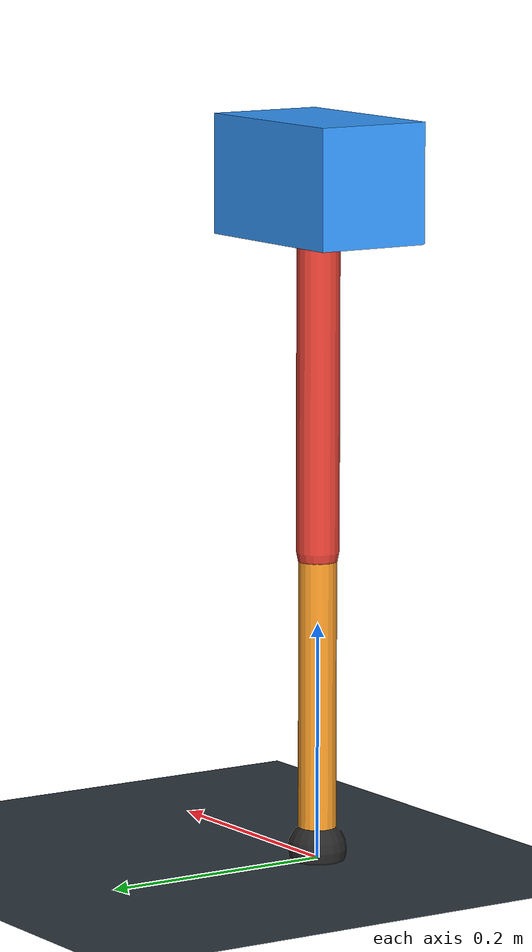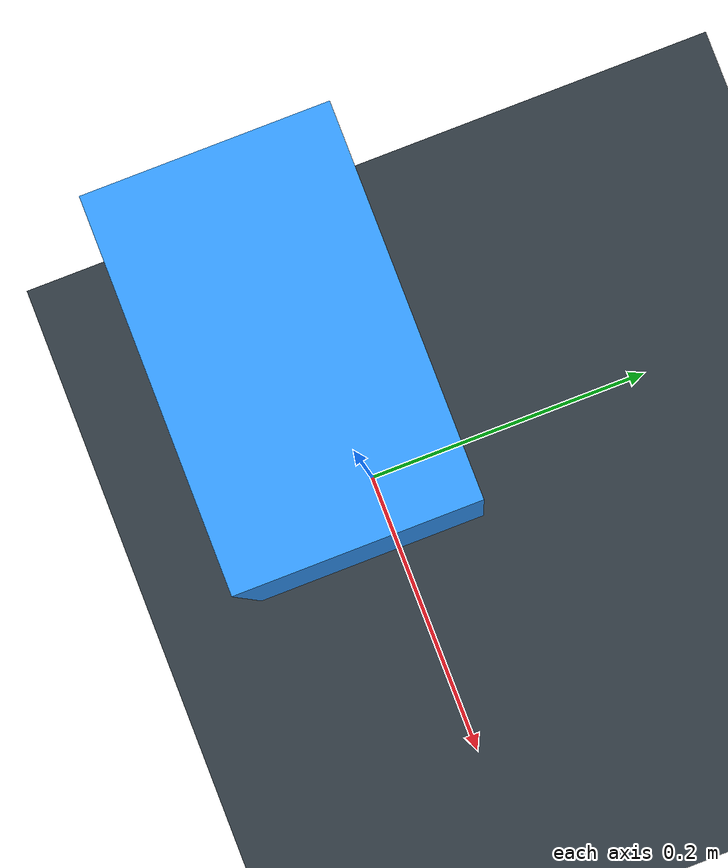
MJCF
<mujoco model="single_axis_two_bar">
  <compiler angle="radian" inertiafromgeom="true"/>
  <option timestep="0.001" integrator="implicitfast" gravity="0 0 -9.81"/>
  <default>
    <joint damping="0.08"/>
    <geom friction="1.2 0.01 0.0001" condim="3"/>
  </default>
  <worldbody>
    <geom name="floor" type="plane" size="5 5 0.1" rgba="0.18 0.22 0.25 1"/>
    <body name="carriage" pos="0 0 0.5719160894609324">
      <joint name="pole_slide" type="slide" axis="0 0 1"/>
      <geom name="payload" type="box" size="0.08 0.05 0.05" mass="2.651928895509752" rgba="0.2 0.6 1 1"/>
      <body name="thigh" pos="0 0 0">
        <joint name="hip" type="hinge" axis="0 1 0"/>
        <geom name="thigh_link" type="capsule" fromto="0 0 0 0 0 -0.3112864102372881" size="0.018" mass="0.22179568058107046" rgba="0.9 0.25 0.2 1"/>
        <body name="shank" pos="0 0 -0.3112864102372881">
          <joint name="knee" type="hinge" axis="0 1 0"/>
          <geom name="shank_link" type="capsule" fromto="0 0 0 0 0 -0.25254460982552884" size="0.016" mass="0.17994137158328283" rgba="0.95 0.6 0.15 1"/>
          <geom name="foot" type="sphere" pos="0 0 -0.25254460982552884" size="0.025" mass="0.03" rgba="0.15 0.15 0.15 1"/>
          <site name="toe" pos="0 0 -0.25254460982552884" size="0.008"/>
        </body>
      </body>
    </body>
  </worldbody>
  <actuator>
    <motor name="hip_motor" joint="hip" ctrlrange="-29.08190813542446 29.08190813542446"/>
    <motor name="knee_motor" joint="knee" ctrlrange="-105.71759344429944 105.71759344429944"/>
  </actuator>
</mujoco>
